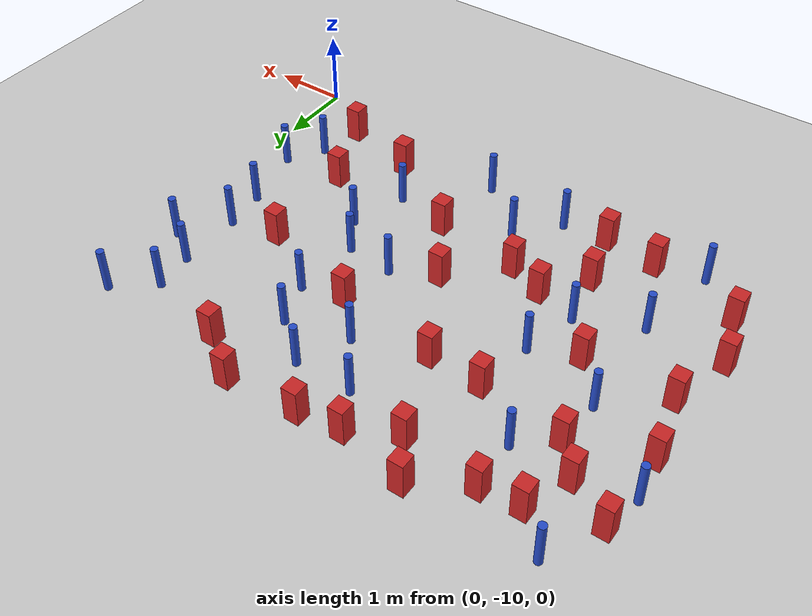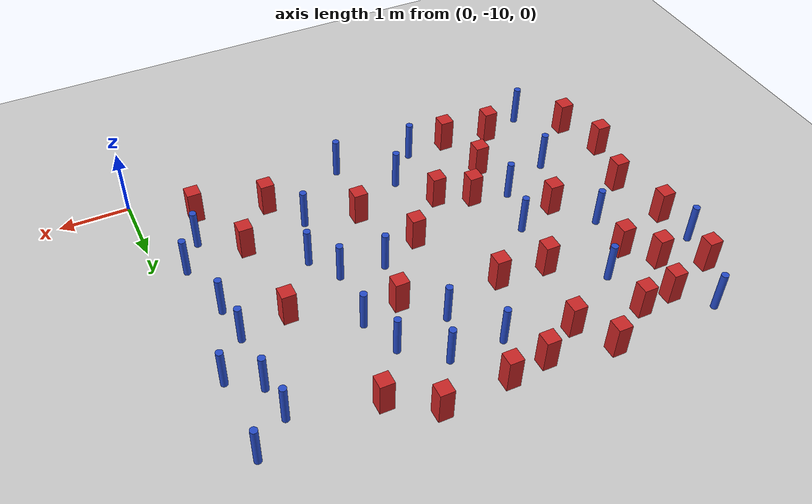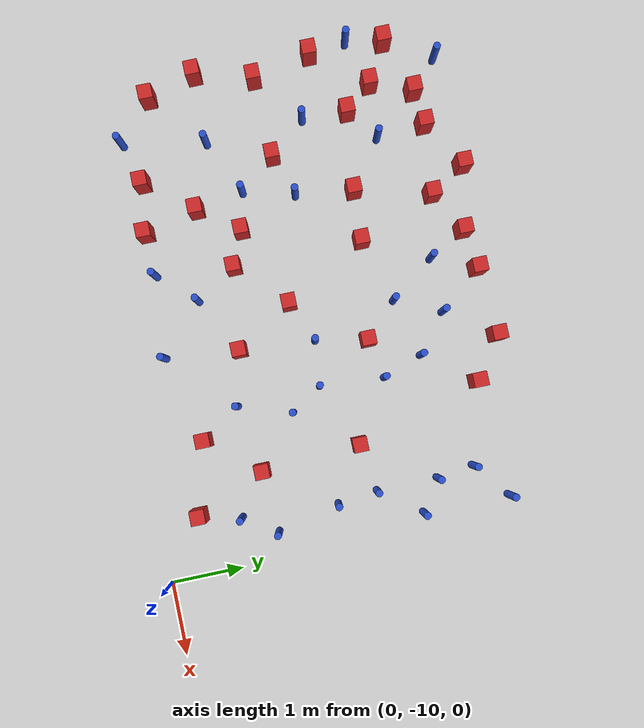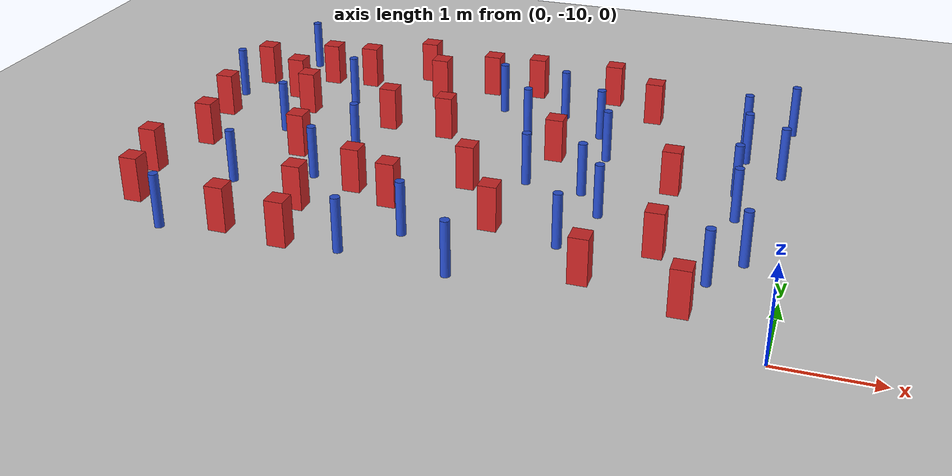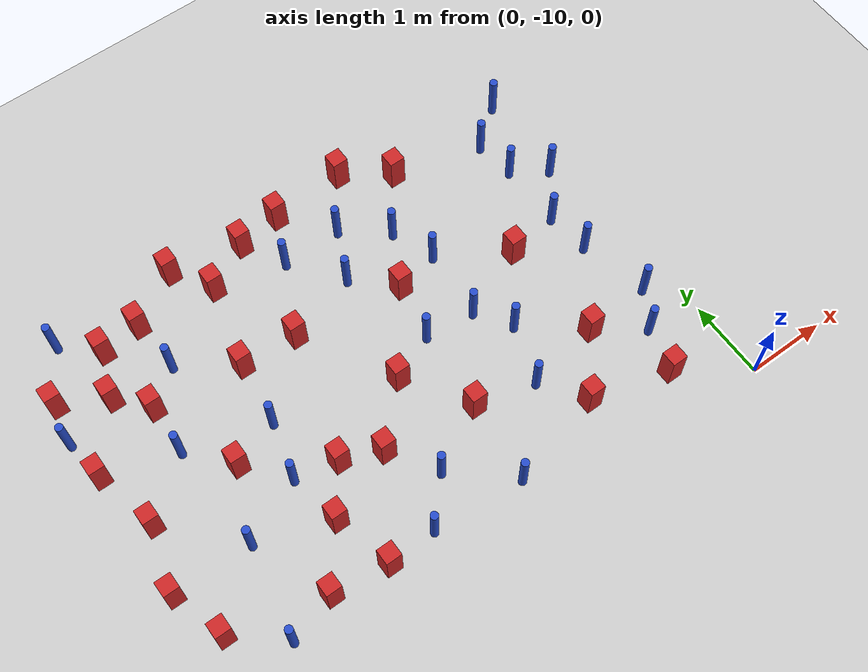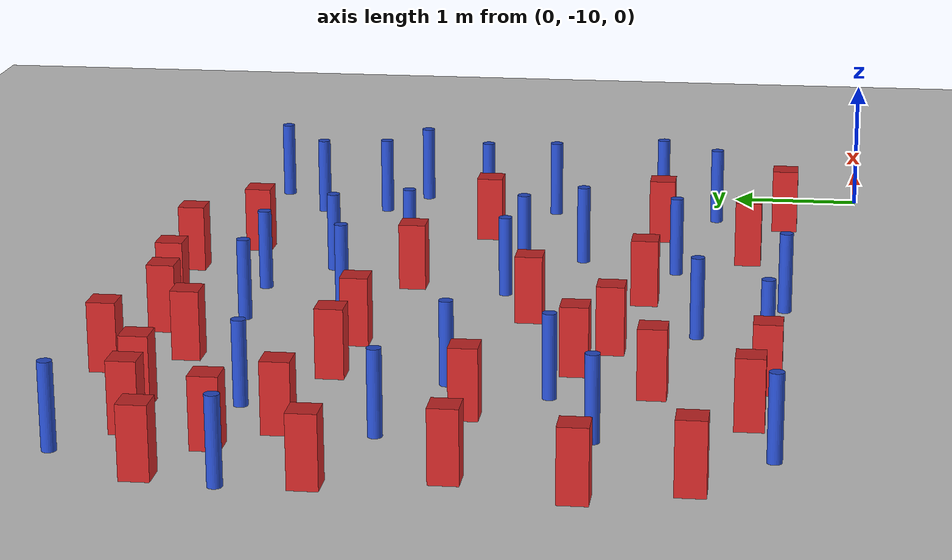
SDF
<sdf version="1.6">
 <world name="default">
  <model name="ground_plane">
   <static>1</static>
   <link name="link">
    <collision name="collision">
     <geometry><plane><normal>0 0 1</normal><size>100 100</size></plane></geometry>
     <surface><friction><ode><mu>100</mu><mu2>50</mu2></ode></friction></surface>
    </collision>
    <visual name="visual">
     <cast_shadows>0</cast_shadows>
     <geometry><plane><normal>0 0 1</normal><size>100 100</size></plane></geometry>
     <material>
      <ambient>1.0 1.0 1.0 1.0</ambient>
      <diffuse>0.8 0.8 0.8 1.0</diffuse>
      <specular>0.01 0.01 0.01 1.000000</specular>
     </material>
    </visual>
   </link>
  </model>
  <model name="square_post_obstacle4">
   <static>true</static>
   <pose>-6.89847792682 -8.28726109435 8.22691968438e-08 7.2212513382e-06 -7.54495500217e-07 2.29674213826e-05</pose>
   <link name="link">
    <pose>0 0 0.25 0 -0 0</pose>
    <inertial>
     <mass>100</mass>
     <inertia>
      <ixx>0.166667</ixx>
      <ixy>0</ixy>
      <ixz>0</ixz>
      <iyy>0.166667</iyy>
      <iyz>0</iyz>
      <izz>0.166667</izz>
     </inertia>
    </inertial>
    <collision name="collision"><geometry><box><size>.2 .2 .5</size></box></geometry></collision>
    <visual name="visual">
     <geometry><box><size>.2 .2 .5</size></box></geometry>
     <material>
      <script><name>Gazebo/Red</name><uri>file://media/materials/scripts/gazebo.material</uri></script>
     </material>
    </visual>
   </link>
  </model>
  <model name="square_post_obstacle5">
   <static>true</static>
   <pose>-4.99715958889 -8.63131955037 8.22691968438e-08 7.22125133819e-06 -7.54495500217e-07 2.29674213826e-05</pose>
   <link name="link">
    <pose>0 0 0.25 0 -0 0</pose>
    <inertial>
     <mass>100</mass>
     <inertia>
      <ixx>0.166667</ixx>
      <ixy>0</ixy>
      <ixz>0</ixz>
      <iyy>0.166667</iyy>
      <iyz>0</iyz>
      <izz>0.166667</izz>
     </inertia>
    </inertial>
    <collision name="collision"><geometry><box><size>.2 .2 .5</size></box></geometry></collision>
    <visual name="visual">
     <geometry><box><size>.2 .2 .5</size></box></geometry>
     <material>
      <script><name>Gazebo/Red</name><uri>file://media/materials/scripts/gazebo.material</uri></script>
     </material>
    </visual>
   </link>
  </model>
  <model name="square_post_obstacle11">
   <static>true</static>
   <pose>-2.94364998078 -8.43636471448 8.22691968438e-08 7.22125133819e-06 -7.54495500217e-07 2.29674213826e-05</pose>
   <link name="link">
    <pose>0 0 0.25 0 -0 0</pose>
    <inertial>
     <mass>100</mass>
     <inertia>
      <ixx>0.166667</ixx>
      <ixy>0</ixy>
      <ixz>0</ixz>
      <iyy>0.166667</iyy>
      <iyz>0</iyz>
      <izz>0.166667</izz>
     </inertia>
    </inertial>
    <collision name="collision"><geometry><box><size>.2 .2 .5</size></box></geometry></collision>
    <visual name="visual">
     <geometry><box><size>.2 .2 .5</size></box></geometry>
     <material>
      <script><name>Gazebo/Red</name><uri>file://media/materials/scripts/gazebo.material</uri></script>
     </material>
    </visual>
   </link>
  </model>
  <model name="pole_obstacle16">
   <static>true</static>
   <pose>-3.04756409129 -9.47227902637 2.88873142074e-08 -9.9053668994e-09 4.60219948987e-07 -1.20965994963e-07</pose>
   <link name="link">
    <pose>0 0 0.3 0 -0 0</pose>
    <inertial>
     <mass>1</mass>
     <inertia><ixx>0.145833</ixx><ixy>0</ixy><ixz>0</ixz><iyy>0.145833</iyy><iyz>0</iyz><izz>0.125</izz></inertia>
    </inertial>
    <collision name="collision">
     <geometry><cylinder><radius>0.05</radius><length>.6</length></cylinder></geometry>
    </collision>
    <visual name="visual">
     <geometry><cylinder><radius>0.05</radius><length>.6</length></cylinder></geometry>
     <material>
      <script><name>Gazebo/Blue</name><uri>file://media/materials/scripts/gazebo.material</uri></script>
     </material>
    </visual>
   </link>
  </model>
  <model name="pole_obstacle18">
   <static>true</static>
   <pose>-0.725370534913 -5.61228863178 2.88873142074e-08 -9.90536689661e-09 4.60219948993e-07 -1.20965994957e-07</pose>
   <link name="link">
    <pose>0 0 0.3 0 -0 0</pose>
    <inertial>
     <mass>1</mass>
     <inertia><ixx>0.145833</ixx><ixy>0</ixy><ixz>0</ixz><iyy>0.145833</iyy><iyz>0</iyz><izz>0.125</izz></inertia>
    </inertial>
    <collision name="collision">
     <geometry><cylinder><radius>0.05</radius><length>.6</length></cylinder></geometry>
    </collision>
    <visual name="visual">
     <geometry><cylinder><radius>0.05</radius><length>.6</length></cylinder></geometry>
     <material>
      <script><name>Gazebo/Blue</name><uri>file://media/materials/scripts/gazebo.material</uri></script>
     </material>
    </visual>
   </link>
  </model>
  <model name="square_post_obstacle14">
   <static>true</static>
   <pose>-1.33679753375 -7.08436974685 8.22691968438e-08 7.2212513382e-06 -7.54495500217e-07 2.29674213826e-05</pose>
   <link name="link">
    <pose>0 0 0.25 0 -0 0</pose>
    <inertial>
     <mass>100</mass>
     <inertia>
      <ixx>0.166667</ixx>
      <ixy>0</ixy>
      <ixz>0</ixz>
      <iyy>0.166667</iyy>
      <iyz>0</iyz>
      <izz>0.166667</izz>
     </inertia>
    </inertial>
    <collision name="collision"><geometry><box><size>.2 .2 .5</size></box></geometry></collision>
    <visual name="visual">
     <geometry><box><size>.2 .2 .5</size></box></geometry>
     <material>
      <script><name>Gazebo/Red</name><uri>file://media/materials/scripts/gazebo.material</uri></script>
     </material>
    </visual>
   </link>
  </model>
  <model name="pole_obstacle19">
   <static>true</static>
   <pose>-3.73403376019 -8.86174645035 2.88873142074e-08 -9.90536692318e-09 4.6021994893e-07 -1.20965994988e-07</pose>
   <link name="link">
    <pose>0 0 0.3 0 -0 0</pose>
    <inertial>
     <mass>1</mass>
     <inertia><ixx>0.145833</ixx><ixy>0</ixy><ixz>0</ixz><iyy>0.145833</iyy><iyz>0</iyz><izz>0.125</izz></inertia>
    </inertial>
    <collision name="collision">
     <geometry><cylinder><radius>0.05</radius><length>.6</length></cylinder></geometry>
    </collision>
    <visual name="visual">
     <geometry><cylinder><radius>0.05</radius><length>.6</length></cylinder></geometry>
     <material>
      <script><name>Gazebo/Blue</name><uri>file://media/materials/scripts/gazebo.material</uri></script>
     </material>
    </visual>
   </link>
  </model>
  <model name="square_post_obstacle16">
   <static>true</static>
   <pose>-5.93300820682 -6.28503762178 8.22691968438e-08 7.2212513382e-06 -7.54495500217e-07 2.29674213826e-05</pose>
   <link name="link">
    <pose>0 0 0.25 0 -0 0</pose>
    <inertial>
     <mass>100</mass>
     <inertia>
      <ixx>0.166667</ixx>
      <ixy>0</ixy>
      <ixz>0</ixz>
      <iyy>0.166667</iyy>
      <iyz>0</iyz>
      <izz>0.166667</izz>
     </inertia>
    </inertial>
    <collision name="collision"><geometry><box><size>.2 .2 .5</size></box></geometry></collision>
    <visual name="visual">
     <geometry><box><size>.2 .2 .5</size></box></geometry>
     <material>
      <script><name>Gazebo/Red</name><uri>file://media/materials/scripts/gazebo.material</uri></script>
     </material>
    </visual>
   </link>
  </model>
  <model name="pole_obstacle31">
   <static>true</static>
   <pose>-5.91071230135 -8.3090513306 2.88873142074e-08 -9.9053668967e-09 4.60219948993e-07 -1.20965994957e-07</pose>
   <link name="link">
    <pose>0 0 0.3 0 -0 0</pose>
    <inertial>
     <mass>1</mass>
     <inertia><ixx>0.145833</ixx><ixy>0</ixy><ixz>0</ixz><iyy>0.145833</iyy><iyz>0</iyz><izz>0.125</izz></inertia>
    </inertial>
    <collision name="collision">
     <geometry><cylinder><radius>0.05</radius><length>.6</length></cylinder></geometry>
    </collision>
    <visual name="visual">
     <geometry><cylinder><radius>0.05</radius><length>.6</length></cylinder></geometry>
     <material>
      <script><name>Gazebo/Blue</name><uri>file://media/materials/scripts/gazebo.material</uri></script>
     </material>
    </visual>
   </link>
  </model>
  <model name="square_post_obstacle27">
   <static>true</static>
   <pose>-4.8171348968 -6.42629901897 8.22691968438e-08 7.2212513382e-06 -7.54495500217e-07 2.29674213826e-05</pose>
   <link name="link">
    <pose>0 0 0.25 0 -0 0</pose>
    <inertial>
     <mass>100</mass>
     <inertia>
      <ixx>0.166667</ixx>
      <ixy>0</ixy>
      <ixz>0</ixz>
      <iyy>0.166667</iyy>
      <iyz>0</iyz>
      <izz>0.166667</izz>
     </inertia>
    </inertial>
    <collision name="collision"><geometry><box><size>.2 .2 .5</size></box></geometry></collision>
    <visual name="visual">
     <geometry><box><size>.2 .2 .5</size></box></geometry>
     <material>
      <script><name>Gazebo/Red</name><uri>file://media/materials/scripts/gazebo.material</uri></script>
     </material>
    </visual>
   </link>
  </model>
  <model name="square_post_obstacle28">
   <static>true</static>
   <pose>-2.72420011936 -6.67131819097 8.22691968438e-08 7.22125133819e-06 -7.54495500217e-07 2.29674213826e-05</pose>
   <link name="link">
    <pose>0 0 0.25 0 -0 0</pose>
    <inertial>
     <mass>100</mass>
     <inertia>
      <ixx>0.166667</ixx>
      <ixy>0</ixy>
      <ixz>0</ixz>
      <iyy>0.166667</iyy>
      <iyz>0</iyz>
      <izz>0.166667</izz>
     </inertia>
    </inertial>
    <collision name="collision"><geometry><box><size>.2 .2 .5</size></box></geometry></collision>
    <visual name="visual">
     <geometry><box><size>.2 .2 .5</size></box></geometry>
     <material>
      <script><name>Gazebo/Red</name><uri>file://media/materials/scripts/gazebo.material</uri></script>
     </material>
    </visual>
   </link>
  </model>
  <model name="pole_obstacle38">
   <static>true</static>
   <pose>-6.93254812859 -6.09302967998 2.88873142074e-08 -9.90536690842e-09 4.60219948965e-07 -1.20965994976e-07</pose>
   <link name="link">
    <pose>0 0 0.3 0 -0 0</pose>
    <inertial>
     <mass>1</mass>
     <inertia><ixx>0.145833</ixx><ixy>0</ixy><ixz>0</ixz><iyy>0.145833</iyy><iyz>0</iyz><izz>0.125</izz></inertia>
    </inertial>
    <collision name="collision">
     <geometry><cylinder><radius>0.05</radius><length>.6</length></cylinder></geometry>
    </collision>
    <visual name="visual">
     <geometry><cylinder><radius>0.05</radius><length>.6</length></cylinder></geometry>
     <material>
      <script><name>Gazebo/Blue</name><uri>file://media/materials/scripts/gazebo.material</uri></script>
     </material>
    </visual>
   </link>
  </model>
  <model name="square_post_obstacle39">
   <static>true</static>
   <pose>-6.82182330717 -5.58379455638 8.22691968438e-08 7.2212513382e-06 -7.54495500217e-07 2.29674213826e-05</pose>
   <link name="link">
    <pose>0 0 0.25 0 -0 0</pose>
    <inertial>
     <mass>100</mass>
     <inertia>
      <ixx>0.166667</ixx>
      <ixy>0</ixy>
      <ixz>0</ixz>
      <iyy>0.166667</iyy>
      <iyz>0</iyz>
      <izz>0.166667</izz>
     </inertia>
    </inertial>
    <collision name="collision"><geometry><box><size>.2 .2 .5</size></box></geometry></collision>
    <visual name="visual">
     <geometry><box><size>.2 .2 .5</size></box></geometry>
     <material>
      <script><name>Gazebo/Red</name><uri>file://media/materials/scripts/gazebo.material</uri></script>
     </material>
    </visual>
   </link>
  </model>
  <model name="square_post_obstacle42">
   <static>true</static>
   <pose>-5.52902615149 -7.43978765106 8.22691968438e-08 7.2212513382e-06 -7.54495500217e-07 2.29674213826e-05</pose>
   <link name="link">
    <pose>0 0 0.25 0 -0 0</pose>
    <inertial>
     <mass>100</mass>
     <inertia>
      <ixx>0.166667</ixx>
      <ixy>0</ixy>
      <ixz>0</ixz>
      <iyy>0.166667</iyy>
      <iyz>0</iyz>
      <izz>0.166667</izz>
     </inertia>
    </inertial>
    <collision name="collision"><geometry><box><size>.2 .2 .5</size></box></geometry></collision>
    <visual name="visual">
     <geometry><box><size>.2 .2 .5</size></box></geometry>
     <material>
      <script><name>Gazebo/Red</name><uri>file://media/materials/scripts/gazebo.material</uri></script>
     </material>
    </visual>
   </link>
  </model>
  <model name="square_post_obstacle43">
   <static>true</static>
   <pose>-6.69458406648 -8.98083696813 8.22691968438e-08 7.22125133819e-06 -7.54495500217e-07 2.29674213826e-05</pose>
   <link name="link">
    <pose>0 0 0.25 0 -0 0</pose>
    <inertial>
     <mass>100</mass>
     <inertia>
      <ixx>0.166667</ixx>
      <ixy>0</ixy>
      <ixz>0</ixz>
      <iyy>0.166667</iyy>
      <iyz>0</iyz>
      <izz>0.166667</izz>
     </inertia>
    </inertial>
    <collision name="collision"><geometry><box><size>.2 .2 .5</size></box></geometry></collision>
    <visual name="visual">
     <geometry><box><size>.2 .2 .5</size></box></geometry>
     <material>
      <script><name>Gazebo/Red</name><uri>file://media/materials/scripts/gazebo.material</uri></script>
     </material>
    </visual>
   </link>
  </model>
  <model name="pole_obstacle57">
   <static>true</static>
   <pose>-0.390171452556 -8.41027305759 2.88873142074e-08 -9.90536691079e-09 4.6021994896e-07 -1.2096599498e-07</pose>
   <link name="link">
    <pose>0 0 0.3 0 -0 0</pose>
    <inertial>
     <mass>1</mass>
     <inertia><ixx>0.145833</ixx><ixy>0</ixy><ixz>0</ixz><iyy>0.145833</iyy><iyz>0</iyz><izz>0.125</izz></inertia>
    </inertial>
    <collision name="collision">
     <geometry><cylinder><radius>0.05</radius><length>.6</length></cylinder></geometry>
    </collision>
    <visual name="visual">
     <geometry><cylinder><radius>0.05</radius><length>.6</length></cylinder></geometry>
     <material>
      <script><name>Gazebo/Blue</name><uri>file://media/materials/scripts/gazebo.material</uri></script>
     </material>
    </visual>
   </link>
  </model>
  <model name="pole_obstacle68">
   <static>true</static>
   <pose>-4.92867841864 -7.23289748465 2.88873142074e-08 -9.90536690842e-09 4.60219948965e-07 -1.20965994976e-07</pose>
   <link name="link">
    <pose>0 0 0.3 0 -0 0</pose>
    <inertial>
     <mass>1</mass>
     <inertia><ixx>0.145833</ixx><ixy>0</ixy><ixz>0</ixz><iyy>0.145833</iyy><iyz>0</iyz><izz>0.125</izz></inertia>
    </inertial>
    <collision name="collision">
     <geometry><cylinder><radius>0.05</radius><length>.6</length></cylinder></geometry>
    </collision>
    <visual name="visual">
     <geometry><cylinder><radius>0.05</radius><length>.6</length></cylinder></geometry>
     <material>
      <script><name>Gazebo/Blue</name><uri>file://media/materials/scripts/gazebo.material</uri></script>
     </material>
    </visual>
   </link>
  </model>
  <model name="square_post_obstacle51">
   <static>true</static>
   <pose>-4.54083356304 -5.36353903543 8.22691968438e-08 7.22125133819e-06 -7.54495500217e-07 2.29674213826e-05</pose>
   <link name="link">
    <pose>0 0 0.25 0 -0 0</pose>
    <inertial>
     <mass>100</mass>
     <inertia>
      <ixx>0.166667</ixx>
      <ixy>0</ixy>
      <ixz>0</ixz>
      <iyy>0.166667</iyy>
      <iyz>0</iyz>
      <izz>0.166667</izz>
     </inertia>
    </inertial>
    <collision name="collision"><geometry><box><size>.2 .2 .5</size></box></geometry></collision>
    <visual name="visual">
     <geometry><box><size>.2 .2 .5</size></box></geometry>
     <material>
      <script><name>Gazebo/Red</name><uri>file://media/materials/scripts/gazebo.material</uri></script>
     </material>
    </visual>
   </link>
  </model>
  <model name="square_post_obstacle58">
   <static>true</static>
   <pose>-6.66805850769 -7.47391446001 8.22691968438e-08 7.22125133819e-06 -7.54495500217e-07 2.29674213826e-05</pose>
   <link name="link">
    <pose>0 0 0.25 0 -0 0</pose>
    <inertial>
     <mass>100</mass>
     <inertia>
      <ixx>0.166667</ixx>
      <ixy>0</ixy>
      <ixz>0</ixz>
      <iyy>0.166667</iyy>
      <iyz>0</iyz>
      <izz>0.166667</izz>
     </inertia>
    </inertial>
    <collision name="collision"><geometry><box><size>.2 .2 .5</size></box></geometry></collision>
    <visual name="visual">
     <geometry><box><size>.2 .2 .5</size></box></geometry>
     <material>
      <script><name>Gazebo/Red</name><uri>file://media/materials/scripts/gazebo.material</uri></script>
     </material>
    </visual>
   </link>
  </model>
  <model name="square_post_obstacle64">
   <static>true</static>
   <pose>-4.10152325743 -6.47074619593 8.22691968438e-08 7.22125133819e-06 -7.54495500217e-07 2.29674213826e-05</pose>
   <link name="link">
    <pose>0 0 0.25 0 -0 0</pose>
    <inertial>
     <mass>100</mass>
     <inertia>
      <ixx>0.166667</ixx>
      <ixy>0</ixy>
      <ixz>0</ixz>
      <iyy>0.166667</iyy>
      <iyz>0</iyz>
      <izz>0.166667</izz>
     </inertia>
    </inertial>
    <collision name="collision"><geometry><box><size>.2 .2 .5</size></box></geometry></collision>
    <visual name="visual">
     <geometry><box><size>.2 .2 .5</size></box></geometry>
     <material>
      <script><name>Gazebo/Red</name><uri>file://media/materials/scripts/gazebo.material</uri></script>
     </material>
    </visual>
   </link>
  </model>
  <model name="pole_obstacle77">
   <static>true</static>
   <pose>-0.592898677398 -7.53756572075 2.88873142074e-08 -9.90536689661e-09 4.60219948993e-07 -1.20965994957e-07</pose>
   <link name="link">
    <pose>0 0 0.3 0 -0 0</pose>
    <inertial>
     <mass>1</mass>
     <inertia><ixx>0.145833</ixx><ixy>0</ixy><ixz>0</ixz><iyy>0.145833</iyy><iyz>0</iyz><izz>0.125</izz></inertia>
    </inertial>
    <collision name="collision">
     <geometry><cylinder><radius>0.05</radius><length>.6</length></cylinder></geometry>
    </collision>
    <visual name="visual">
     <geometry><cylinder><radius>0.05</radius><length>.6</length></cylinder></geometry>
     <material>
      <script><name>Gazebo/Blue</name><uri>file://media/materials/scripts/gazebo.material</uri></script>
     </material>
    </visual>
   </link>
  </model>
  <model name="pole_obstacle86">
   <static>true</static>
   <pose>-0.660240607228 -6.12908045797 2.88873142074e-08 -9.90536689661e-09 4.60219948993e-07 -1.20965994957e-07</pose>
   <link name="link">
    <pose>0 0 0.3 0 -0 0</pose>
    <inertial>
     <mass>1</mass>
     <inertia><ixx>0.145833</ixx><ixy>0</ixy><ixz>0</ixz><iyy>0.145833</iyy><iyz>0</iyz><izz>0.125</izz></inertia>
    </inertial>
    <collision name="collision">
     <geometry><cylinder><radius>0.05</radius><length>.6</length></cylinder></geometry>
    </collision>
    <visual name="visual">
     <geometry><cylinder><radius>0.05</radius><length>.6</length></cylinder></geometry>
     <material>
      <script><name>Gazebo/Blue</name><uri>file://media/materials/scripts/gazebo.material</uri></script>
     </material>
    </visual>
   </link>
  </model>
  <model name="pole_obstacle89">
   <static>true</static>
   <pose>-1.94730726459 -7.88725564603 2.88873142074e-08 -9.90536689852e-09 4.60219948989e-07 -1.2096599496e-07</pose>
   <link name="link">
    <pose>0 0 0.3 0 -0 0</pose>
    <inertial>
     <mass>1</mass>
     <inertia><ixx>0.145833</ixx><ixy>0</ixy><ixz>0</ixz><iyy>0.145833</iyy><iyz>0</iyz><izz>0.125</izz></inertia>
    </inertial>
    <collision name="collision">
     <geometry><cylinder><radius>0.05</radius><length>.6</length></cylinder></geometry>
    </collision>
    <visual name="visual">
     <geometry><cylinder><radius>0.05</radius><length>.6</length></cylinder></geometry>
     <material>
      <script><name>Gazebo/Blue</name><uri>file://media/materials/scripts/gazebo.material</uri></script>
     </material>
    </visual>
   </link>
  </model>
  <model name="square_post_obstacle79">
   <static>true</static>
   <pose>-3.44797224578 -7.63409735773 8.22691968438e-08 7.2212513382e-06 -7.54495500217e-07 2.29674213826e-05</pose>
   <link name="link">
    <pose>0 0 0.25 0 -0 0</pose>
    <inertial>
     <mass>100</mass>
     <inertia>
      <ixx>0.166667</ixx>
      <ixy>0</ixy>
      <ixz>0</ixz>
      <iyy>0.166667</iyy>
      <iyz>0</iyz>
      <izz>0.166667</izz>
     </inertia>
    </inertial>
    <collision name="collision"><geometry><box><size>.2 .2 .5</size></box></geometry></collision>
    <visual name="visual">
     <geometry><box><size>.2 .2 .5</size></box></geometry>
     <material>
      <script><name>Gazebo/Red</name><uri>file://media/materials/scripts/gazebo.material</uri></script>
     </material>
    </visual>
   </link>
  </model>
  <model name="square_post_obstacle80">
   <static>true</static>
   <pose>-3.39131519977 -4.97092265114 8.22691968438e-08 7.22125133819e-06 -7.54495500217e-07 2.29674213826e-05</pose>
   <link name="link">
    <pose>0 0 0.25 0 -0 0</pose>
    <inertial>
     <mass>100</mass>
     <inertia>
      <ixx>0.166667</ixx>
      <ixy>0</ixy>
      <ixz>0</ixz>
      <iyy>0.166667</iyy>
      <iyz>0</iyz>
      <izz>0.166667</izz>
     </inertia>
    </inertial>
    <collision name="collision"><geometry><box><size>.2 .2 .5</size></box></geometry></collision>
    <visual name="visual">
     <geometry><box><size>.2 .2 .5</size></box></geometry>
     <material>
      <script><name>Gazebo/Red</name><uri>file://media/materials/scripts/gazebo.material</uri></script>
     </material>
    </visual>
   </link>
  </model>
  <model name="pole_obstacle97">
   <static>true</static>
   <pose>-2.86139601334 -7.38526172102 2.88873142074e-08 -9.90536689859e-09 4.60219948989e-07 -1.20965994961e-07</pose>
   <link name="link">
    <pose>0 0 0.3 0 -0 0</pose>
    <inertial>
     <mass>1</mass>
     <inertia><ixx>0.145833</ixx><ixy>0</ixy><ixz>0</ixz><iyy>0.145833</iyy><iyz>0</iyz><izz>0.125</izz></inertia>
    </inertial>
    <collision name="collision">
     <geometry><cylinder><radius>0.05</radius><length>.6</length></cylinder></geometry>
    </collision>
    <visual name="visual">
     <geometry><cylinder><radius>0.05</radius><length>.6</length></cylinder></geometry>
     <material>
      <script><name>Gazebo/Blue</name><uri>file://media/materials/scripts/gazebo.material</uri></script>
     </material>
    </visual>
   </link>
  </model>
  <model name="pole_obstacle100">
   <static>true</static>
   <pose>-2.22927015639 -7.4533081408 2.88873142074e-08 -9.90536689859e-09 4.60219948989e-07 -1.20965994961e-07</pose>
   <link name="link">
    <pose>0 0 0.3 0 -0 0</pose>
    <inertial>
     <mass>1</mass>
     <inertia><ixx>0.145833</ixx><ixy>0</ixy><ixz>0</ixz><iyy>0.145833</iyy><iyz>0</iyz><izz>0.125</izz></inertia>
    </inertial>
    <collision name="collision">
     <geometry><cylinder><radius>0.05</radius><length>.6</length></cylinder></geometry>
    </collision>
    <visual name="visual">
     <geometry><cylinder><radius>0.05</radius><length>.6</length></cylinder></geometry>
     <material>
      <script><name>Gazebo/Blue</name><uri>file://media/materials/scripts/gazebo.material</uri></script>
     </material>
    </visual>
   </link>
  </model>
  <model name="square_post_obstacle99">
   <static>true</static>
   <pose>-2.43279941911 -4.90987903191 8.22691968438e-08 7.22125133819e-06 -7.54495500217e-07 2.29674213826e-05</pose>
   <link name="link">
    <pose>0 0 0.25 0 -0 0</pose>
    <inertial>
     <mass>100</mass>
     <inertia>
      <ixx>0.166667</ixx>
      <ixy>0</ixy>
      <ixz>0</ixz>
      <iyy>0.166667</iyy>
      <iyz>0</iyz>
      <izz>0.166667</izz>
     </inertia>
    </inertial>
    <collision name="collision"><geometry><box><size>.2 .2 .5</size></box></geometry></collision>
    <visual name="visual">
     <geometry><box><size>.2 .2 .5</size></box></geometry>
     <material>
      <script><name>Gazebo/Red</name><uri>file://media/materials/scripts/gazebo.material</uri></script>
     </material>
    </visual>
   </link>
  </model>
  <model name="pole_obstacle104">
   <static>true</static>
   <pose>-6.13169709679 -9.47226870257 2.88873142074e-08 -9.9053668967e-09 4.60219948993e-07 -1.20965994957e-07</pose>
   <link name="link">
    <pose>0 0 0.3 0 -0 0</pose>
    <inertial>
     <mass>1</mass>
     <inertia><ixx>0.145833</ixx><ixy>0</ixy><ixz>0</ixz><iyy>0.145833</iyy><iyz>0</iyz><izz>0.125</izz></inertia>
    </inertial>
    <collision name="collision">
     <geometry><cylinder><radius>0.05</radius><length>.6</length></cylinder></geometry>
    </collision>
    <visual name="visual">
     <geometry><cylinder><radius>0.05</radius><length>.6</length></cylinder></geometry>
     <material>
      <script><name>Gazebo/Blue</name><uri>file://media/materials/scripts/gazebo.material</uri></script>
     </material>
    </visual>
   </link>
  </model>
  <model name="pole_obstacle109">
   <static>true</static>
   <pose>-0.230915823604 -5.21363662847 2.88873142074e-08 -9.90536689703e-09 4.60219948992e-07 -1.20965994959e-07</pose>
   <link name="link">
    <pose>0 0 0.3 0 -0 0</pose>
    <inertial>
     <mass>1</mass>
     <inertia><ixx>0.145833</ixx><ixy>0</ixy><ixz>0</ixz><iyy>0.145833</iyy><iyz>0</iyz><izz>0.125</izz></inertia>
    </inertial>
    <collision name="collision">
     <geometry><cylinder><radius>0.05</radius><length>.6</length></cylinder></geometry>
    </collision>
    <visual name="visual">
     <geometry><cylinder><radius>0.05</radius><length>.6</length></cylinder></geometry>
     <material>
      <script><name>Gazebo/Blue</name><uri>file://media/materials/scripts/gazebo.material</uri></script>
     </material>
    </visual>
   </link>
  </model>
  <model name="square_post_obstacle108">
   <static>true</static>
   <pose>-0.836702543547 -9.42551951914 8.22691968438e-08 7.22125133819e-06 -7.54495500217e-07 2.29674213826e-05</pose>
   <link name="link">
    <pose>0 0 0.25 0 -0 0</pose>
    <inertial>
     <mass>100</mass>
     <inertia>
      <ixx>0.166667</ixx>
      <ixy>0</ixy>
      <ixz>0</ixz>
      <iyy>0.166667</iyy>
      <iyz>0</iyz>
      <izz>0.166667</izz>
     </inertia>
    </inertial>
    <collision name="collision"><geometry><box><size>.2 .2 .5</size></box></geometry></collision>
    <visual name="visual">
     <geometry><box><size>.2 .2 .5</size></box></geometry>
     <material>
      <script><name>Gazebo/Red</name><uri>file://media/materials/scripts/gazebo.material</uri></script>
     </material>
    </visual>
   </link>
  </model>
  <model name="pole_obstacle113">
   <static>true</static>
   <pose>-5.48943360602 -5.93772221229 2.88873142074e-08 -9.90536690842e-09 4.60219948965e-07 -1.20965994976e-07</pose>
   <link name="link">
    <pose>0 0 0.3 0 -0 0</pose>
    <inertial>
     <mass>1</mass>
     <inertia><ixx>0.145833</ixx><ixy>0</ixy><ixz>0</ixz><iyy>0.145833</iyy><iyz>0</iyz><izz>0.125</izz></inertia>
    </inertial>
    <collision name="collision">
     <geometry><cylinder><radius>0.05</radius><length>.6</length></cylinder></geometry>
    </collision>
    <visual name="visual">
     <geometry><cylinder><radius>0.05</radius><length>.6</length></cylinder></geometry>
     <material>
      <script><name>Gazebo/Blue</name><uri>file://media/materials/scripts/gazebo.material</uri></script>
     </material>
    </visual>
   </link>
  </model>
  <model name="square_post_obstacle117">
   <static>true</static>
   <pose>-5.51898376412 -9.29542575051 8.22691968438e-08 7.22125133819e-06 -7.54495500217e-07 2.29674213826e-05</pose>
   <link name="link">
    <pose>0 0 0.25 0 -0 0</pose>
    <inertial>
     <mass>100</mass>
     <inertia>
      <ixx>0.166667</ixx>
      <ixy>0</ixy>
      <ixz>0</ixz>
      <iyy>0.166667</iyy>
      <iyz>0</iyz>
      <izz>0.166667</izz>
     </inertia>
    </inertial>
    <collision name="collision"><geometry><box><size>.2 .2 .5</size></box></geometry></collision>
    <visual name="visual">
     <geometry><box><size>.2 .2 .5</size></box></geometry>
     <material>
      <script><name>Gazebo/Red</name><uri>file://media/materials/scripts/gazebo.material</uri></script>
     </material>
    </visual>
   </link>
  </model>
  <model name="pole_obstacle139">
   <static>true</static>
   <pose>-2.1635901593 -6.55166167454 2.88873142074e-08 -9.90536689859e-09 4.60219948989e-07 -1.20965994961e-07</pose>
   <link name="link">
    <pose>0 0 0.3 0 -0 0</pose>
    <inertial>
     <mass>1</mass>
     <inertia><ixx>0.145833</ixx><ixy>0</ixy><ixz>0</ixz><iyy>0.145833</iyy><iyz>0</iyz><izz>0.125</izz></inertia>
    </inertial>
    <collision name="collision">
     <geometry><cylinder><radius>0.05</radius><length>.6</length></cylinder></geometry>
    </collision>
    <visual name="visual">
     <geometry><cylinder><radius>0.05</radius><length>.6</length></cylinder></geometry>
     <material>
      <script><name>Gazebo/Blue</name><uri>file://media/materials/scripts/gazebo.material</uri></script>
     </material>
    </visual>
   </link>
  </model>
  <model name="pole_obstacle142">
   <static>true</static>
   <pose>-0.237644465877 -6.41427470171 2.88873142074e-08 -9.90536689703e-09 4.60219948992e-07 -1.20965994959e-07</pose>
   <link name="link">
    <pose>0 0 0.3 0 -0 0</pose>
    <inertial>
     <mass>1</mass>
     <inertia><ixx>0.145833</ixx><ixy>0</ixy><ixz>0</ixz><iyy>0.145833</iyy><iyz>0</iyz><izz>0.125</izz></inertia>
    </inertial>
    <collision name="collision">
     <geometry><cylinder><radius>0.05</radius><length>.6</length></cylinder></geometry>
    </collision>
    <visual name="visual">
     <geometry><cylinder><radius>0.05</radius><length>.6</length></cylinder></geometry>
     <material>
      <script><name>Gazebo/Blue</name><uri>file://media/materials/scripts/gazebo.material</uri></script>
     </material>
    </visual>
   </link>
  </model>
  <model name="square_post_obstacle139">
   <static>true</static>
   <pose>-4.85796533244 -4.85868718945 8.22691968438e-08 7.22125133819e-06 -7.54495500217e-07 2.29674213826e-05</pose>
   <link name="link">
    <pose>0 0 0.25 0 -0 0</pose>
    <inertial>
     <mass>100</mass>
     <inertia>
      <ixx>0.166667</ixx>
      <ixy>0</ixy>
      <ixz>0</ixz>
      <iyy>0.166667</iyy>
      <iyz>0</iyz>
      <izz>0.166667</izz>
     </inertia>
    </inertial>
    <collision name="collision"><geometry><box><size>.2 .2 .5</size></box></geometry></collision>
    <visual name="visual">
     <geometry><box><size>.2 .2 .5</size></box></geometry>
     <material>
      <script><name>Gazebo/Red</name><uri>file://media/materials/scripts/gazebo.material</uri></script>
     </material>
    </visual>
   </link>
  </model>
  <model name="square_post_obstacle140">
   <static>true</static>
   <pose>-6.26141203056 -5.89522120653 8.22691968438e-08 7.22125133819e-06 -7.54495500217e-07 2.29674213826e-05</pose>
   <link name="link">
    <pose>0 0 0.25 0 -0 0</pose>
    <inertial>
     <mass>100</mass>
     <inertia>
      <ixx>0.166667</ixx>
      <ixy>0</ixy>
      <ixz>0</ixz>
      <iyy>0.166667</iyy>
      <iyz>0</iyz>
      <izz>0.166667</izz>
     </inertia>
    </inertial>
    <collision name="collision"><geometry><box><size>.2 .2 .5</size></box></geometry></collision>
    <visual name="visual">
     <geometry><box><size>.2 .2 .5</size></box></geometry>
     <material>
      <script><name>Gazebo/Red</name><uri>file://media/materials/scripts/gazebo.material</uri></script>
     </material>
    </visual>
   </link>
  </model>
  <model name="pole_obstacle149">
   <static>true</static>
   <pose>-0.682147562871 -8.86739986068 2.88873142074e-08 -9.90536690779e-09 4.60219948967e-07 -1.20965994975e-07</pose>
   <link name="link">
    <pose>0 0 0.3 0 -0 0</pose>
    <inertial>
     <mass>1</mass>
     <inertia><ixx>0.145833</ixx><ixy>0</ixy><ixz>0</ixz><iyy>0.145833</iyy><iyz>0</iyz><izz>0.125</izz></inertia>
    </inertial>
    <collision name="collision">
     <geometry><cylinder><radius>0.05</radius><length>.6</length></cylinder></geometry>
    </collision>
    <visual name="visual">
     <geometry><cylinder><radius>0.05</radius><length>.6</length></cylinder></geometry>
     <material>
      <script><name>Gazebo/Blue</name><uri>file://media/materials/scripts/gazebo.material</uri></script>
     </material>
    </visual>
   </link>
  </model>
  <model name="square_post_obstacle150">
   <static>true</static>
   <pose>-1.82659507961 -9.16257083729 8.22691968438e-08 7.2212513382e-06 -7.54495500217e-07 2.29674213826e-05</pose>
   <link name="link">
    <pose>0 0 0.25 0 -0 0</pose>
    <inertial>
     <mass>100</mass>
     <inertia>
      <ixx>0.166667</ixx>
      <ixy>0</ixy>
      <ixz>0</ixz>
      <iyy>0.166667</iyy>
      <iyz>0</iyz>
      <izz>0.166667</izz>
     </inertia>
    </inertial>
    <collision name="collision"><geometry><box><size>.2 .2 .5</size></box></geometry></collision>
    <visual name="visual">
     <geometry><box><size>.2 .2 .5</size></box></geometry>
     <material>
      <script><name>Gazebo/Red</name><uri>file://media/materials/scripts/gazebo.material</uri></script>
     </material>
    </visual>
   </link>
  </model>
  <model name="pole_obstacle157">
   <static>true</static>
   <pose>-5.96567630934 -6.91867703106 2.88873142074e-08 -9.90536690842e-09 4.60219948965e-07 -1.20965994976e-07</pose>
   <link name="link">
    <pose>0 0 0.3 0 -0 0</pose>
    <inertial>
     <mass>1</mass>
     <inertia><ixx>0.145833</ixx><ixy>0</ixy><ixz>0</ixz><iyy>0.145833</iyy><iyz>0</iyz><izz>0.125</izz></inertia>
    </inertial>
    <collision name="collision">
     <geometry><cylinder><radius>0.05</radius><length>.6</length></cylinder></geometry>
    </collision>
    <visual name="visual">
     <geometry><cylinder><radius>0.05</radius><length>.6</length></cylinder></geometry>
     <material>
      <script><name>Gazebo/Blue</name><uri>file://media/materials/scripts/gazebo.material</uri></script>
     </material>
    </visual>
   </link>
  </model>
  <model name="square_post_obstacle154">
   <static>true</static>
   <pose>-5.5330856905 -5.26006373033 8.22691968438e-08 7.22125133819e-06 -7.54495500217e-07 2.29674213826e-05</pose>
   <link name="link">
    <pose>0 0 0.25 0 -0 0</pose>
    <inertial>
     <mass>100</mass>
     <inertia>
      <ixx>0.166667</ixx>
      <ixy>0</ixy>
      <ixz>0</ixz>
      <iyy>0.166667</iyy>
      <iyz>0</iyz>
      <izz>0.166667</izz>
     </inertia>
    </inertial>
    <collision name="collision"><geometry><box><size>.2 .2 .5</size></box></geometry></collision>
    <visual name="visual">
     <geometry><box><size>.2 .2 .5</size></box></geometry>
     <material>
      <script><name>Gazebo/Red</name><uri>file://media/materials/scripts/gazebo.material</uri></script>
     </material>
    </visual>
   </link>
  </model>
  <model name="square_post_obstacle155">
   <static>true</static>
   <pose>-6.85237044664 -6.63849824851 8.22691968438e-08 7.22125133819e-06 -7.54495500217e-07 2.29674213826e-05</pose>
   <link name="link">
    <pose>0 0 0.25 0 -0 0</pose>
    <inertial>
     <mass>100</mass>
     <inertia>
      <ixx>0.166667</ixx>
      <ixy>0</ixy>
      <ixz>0</ixz>
      <iyy>0.166667</iyy>
      <iyz>0</iyz>
      <izz>0.166667</izz>
     </inertia>
    </inertial>
    <collision name="collision"><geometry><box><size>.2 .2 .5</size></box></geometry></collision>
    <visual name="visual">
     <geometry><box><size>.2 .2 .5</size></box></geometry>
     <material>
      <script><name>Gazebo/Red</name><uri>file://media/materials/scripts/gazebo.material</uri></script>
     </material>
    </visual>
   </link>
  </model>
  <model name="pole_obstacle167">
   <static>true</static>
   <pose>-3.18666302893 -6.20060540389 2.88873142074e-08 -9.90536689859e-09 4.60219948989e-07 -1.20965994961e-07</pose>
   <link name="link">
    <pose>0 0 0.3 0 -0 0</pose>
    <inertial>
     <mass>1</mass>
     <inertia><ixx>0.145833</ixx><ixy>0</ixy><ixz>0</ixz><iyy>0.145833</iyy><iyz>0</iyz><izz>0.125</izz></inertia>
    </inertial>
    <collision name="collision">
     <geometry><cylinder><radius>0.05</radius><length>.6</length></cylinder></geometry>
    </collision>
    <visual name="visual">
     <geometry><cylinder><radius>0.05</radius><length>.6</length></cylinder></geometry>
     <material>
      <script><name>Gazebo/Blue</name><uri>file://media/materials/scripts/gazebo.material</uri></script>
     </material>
    </visual>
   </link>
  </model>
  <model name="square_post_obstacle166">
   <static>true</static>
   <pose>-1.85931777102 -5.31007730016 8.22691968438e-08 7.2212513382e-06 -7.54495500217e-07 2.29674213826e-05</pose>
   <link name="link">
    <pose>0 0 0.25 0 -0 0</pose>
    <inertial>
     <mass>100</mass>
     <inertia>
      <ixx>0.166667</ixx>
      <ixy>0</ixy>
      <ixz>0</ixz>
      <iyy>0.166667</iyy>
      <iyz>0</iyz>
      <izz>0.166667</izz>
     </inertia>
    </inertial>
    <collision name="collision"><geometry><box><size>.2 .2 .5</size></box></geometry></collision>
    <visual name="visual">
     <geometry><box><size>.2 .2 .5</size></box></geometry>
     <material>
      <script><name>Gazebo/Red</name><uri>file://media/materials/scripts/gazebo.material</uri></script>
     </material>
    </visual>
   </link>
  </model>
  <model name="square_post_obstacle171">
   <static>true</static>
   <pose>-4.10042514364 -8.27960576444 8.22691968438e-08 7.22125133819e-06 -7.54495500217e-07 2.29674213826e-05</pose>
   <link name="link">
    <pose>0 0 0.25 0 -0 0</pose>
    <inertial>
     <mass>100</mass>
     <inertia>
      <ixx>0.166667</ixx>
      <ixy>0</ixy>
      <ixz>0</ixz>
      <iyy>0.166667</iyy>
      <iyz>0</iyz>
      <izz>0.166667</izz>
     </inertia>
    </inertial>
    <collision name="collision"><geometry><box><size>.2 .2 .5</size></box></geometry></collision>
    <visual name="visual">
     <geometry><box><size>.2 .2 .5</size></box></geometry>
     <material>
      <script><name>Gazebo/Red</name><uri>file://media/materials/scripts/gazebo.material</uri></script>
     </material>
    </visual>
   </link>
  </model>
  <model name="pole_obstacle179">
   <static>true</static>
   <pose>-6.45181991624 -4.91383493677 2.88873142074e-08 -9.90536690842e-09 4.60219948965e-07 -1.20965994976e-07</pose>
   <link name="link">
    <pose>0 0 0.3 0 -0 0</pose>
    <inertial>
     <mass>1</mass>
     <inertia><ixx>0.145833</ixx><ixy>0</ixy><ixz>0</ixz><iyy>0.145833</iyy><iyz>0</iyz><izz>0.125</izz></inertia>
    </inertial>
    <collision name="collision">
     <geometry><cylinder><radius>0.05</radius><length>.6</length></cylinder></geometry>
    </collision>
    <visual name="visual">
     <geometry><cylinder><radius>0.05</radius><length>.6</length></cylinder></geometry>
     <material>
      <script><name>Gazebo/Blue</name><uri>file://media/materials/scripts/gazebo.material</uri></script>
     </material>
    </visual>
   </link>
  </model>
  <model name="square_post_obstacle175">
   <static>true</static>
   <pose>-1.2542038751 -8.46072602658 8.22691968438e-08 7.22125133819e-06 -7.54495500217e-07 2.29674213826e-05</pose>
   <link name="link">
    <pose>0 0 0.25 0 -0 0</pose>
    <inertial>
     <mass>100</mass>
     <inertia>
      <ixx>0.166667</ixx>
      <ixy>0</ixy>
      <ixz>0</ixz>
      <iyy>0.166667</iyy>
      <iyz>0</iyz>
      <izz>0.166667</izz>
     </inertia>
    </inertial>
    <collision name="collision"><geometry><box><size>.2 .2 .5</size></box></geometry></collision>
    <visual name="visual">
     <geometry><box><size>.2 .2 .5</size></box></geometry>
     <material>
      <script><name>Gazebo/Red</name><uri>file://media/materials/scripts/gazebo.material</uri></script>
     </material>
    </visual>
   </link>
  </model>
  <model name="square_post_obstacle176">
   <static>true</static>
   <pose>-4.58475472421 -8.07282798267 8.22691968438e-08 7.22125133819e-06 -7.54495500217e-07 2.29674213826e-05</pose>
   <link name="link">
    <pose>0 0 0.25 0 -0 0</pose>
    <inertial>
     <mass>100</mass>
     <inertia>
      <ixx>0.166667</ixx>
      <ixy>0</ixy>
      <ixz>0</ixz>
      <iyy>0.166667</iyy>
      <iyz>0</iyz>
      <izz>0.166667</izz>
     </inertia>
    </inertial>
    <collision name="collision"><geometry><box><size>.2 .2 .5</size></box></geometry></collision>
    <visual name="visual">
     <geometry><box><size>.2 .2 .5</size></box></geometry>
     <material>
      <script><name>Gazebo/Red</name><uri>file://media/materials/scripts/gazebo.material</uri></script>
     </material>
    </visual>
   </link>
  </model>
  <model name="square_post_obstacle177">
   <static>true</static>
   <pose>-4.81196873465 -9.38845134363 8.22691968438e-08 7.22125133819e-06 -7.54495500217e-07 2.29674213826e-05</pose>
   <link name="link">
    <pose>0 0 0.25 0 -0 0</pose>
    <inertial>
     <mass>100</mass>
     <inertia>
      <ixx>0.166667</ixx>
      <ixy>0</ixy>
      <ixz>0</ixz>
      <iyy>0.166667</iyy>
      <iyz>0</iyz>
      <izz>0.166667</izz>
     </inertia>
    </inertial>
    <collision name="collision"><geometry><box><size>.2 .2 .5</size></box></geometry></collision>
    <visual name="visual">
     <geometry><box><size>.2 .2 .5</size></box></geometry>
     <material>
      <script><name>Gazebo/Red</name><uri>file://media/materials/scripts/gazebo.material</uri></script>
     </material>
    </visual>
   </link>
  </model>
  <model name="square_post_obstacle194">
   <static>true</static>
   <pose>-6.03564828903 -5.31053451058 8.22691968438e-08 7.2212513382e-06 -7.54495500217e-07 2.29674213826e-05</pose>
   <link name="link">
    <pose>0 0 0.25 0 -0 0</pose>
    <inertial>
     <mass>100</mass>
     <inertia>
      <ixx>0.166667</ixx>
      <ixy>0</ixy>
      <ixz>0</ixz>
      <iyy>0.166667</iyy>
      <iyz>0</iyz>
      <izz>0.166667</izz>
     </inertia>
    </inertial>
    <collision name="collision"><geometry><box><size>.2 .2 .5</size></box></geometry></collision>
    <visual name="visual">
     <geometry><box><size>.2 .2 .5</size></box></geometry>
     <material>
      <script><name>Gazebo/Red</name><uri>file://media/materials/scripts/gazebo.material</uri></script>
     </material>
    </visual>
   </link>
  </model>
  <model name="square_post_obstacle195">
   <static>true</static>
   <pose>-3.9543966752 -5.0472951096 8.22691968438e-08 7.22125133819e-06 -7.54495500217e-07 2.29674213826e-05</pose>
   <link name="link">
    <pose>0 0 0.25 0 -0 0</pose>
    <inertial>
     <mass>100</mass>
     <inertia>
      <ixx>0.166667</ixx>
      <ixy>0</ixy>
      <ixz>0</ixz>
      <iyy>0.166667</iyy>
      <iyz>0</iyz>
      <izz>0.166667</izz>
     </inertia>
    </inertial>
    <collision name="collision"><geometry><box><size>.2 .2 .5</size></box></geometry></collision>
    <visual name="visual">
     <geometry><box><size>.2 .2 .5</size></box></geometry>
     <material>
      <script><name>Gazebo/Red</name><uri>file://media/materials/scripts/gazebo.material</uri></script>
     </material>
    </visual>
   </link>
  </model>
  <model name="pole_obstacle189">
   <static>true</static>
   <pose>-5.11890258849 -7.95217301457 2.88873142074e-08 -9.90536690264e-09 4.60219948979e-07 -1.20965994965e-07</pose>
   <link name="link">
    <pose>0 0 0.3 0 -0 0</pose>
    <inertial>
     <mass>1</mass>
     <inertia><ixx>0.145833</ixx><ixy>0</ixy><ixz>0</ixz><iyy>0.145833</iyy><iyz>0</iyz><izz>0.125</izz></inertia>
    </inertial>
    <collision name="collision">
     <geometry><cylinder><radius>0.05</radius><length>.6</length></cylinder></geometry>
    </collision>
    <visual name="visual">
     <geometry><cylinder><radius>0.05</radius><length>.6</length></cylinder></geometry>
     <material>
      <script><name>Gazebo/Blue</name><uri>file://media/materials/scripts/gazebo.material</uri></script>
     </material>
    </visual>
   </link>
  </model>
  <model name="pole_obstacle190">
   <static>true</static>
   <pose>-2.89329162519 -5.56621963045 2.88873142074e-08 -9.90536689859e-09 4.60219948989e-07 -1.20965994961e-07</pose>
   <link name="link">
    <pose>0 0 0.3 0 -0 0</pose>
    <inertial>
     <mass>1</mass>
     <inertia><ixx>0.145833</ixx><ixy>0</ixy><ixz>0</ixz><iyy>0.145833</iyy><iyz>0</iyz><izz>0.125</izz></inertia>
    </inertial>
    <collision name="collision">
     <geometry><cylinder><radius>0.05</radius><length>.6</length></cylinder></geometry>
    </collision>
    <visual name="visual">
     <geometry><cylinder><radius>0.05</radius><length>.6</length></cylinder></geometry>
     <material>
      <script><name>Gazebo/Blue</name><uri>file://media/materials/scripts/gazebo.material</uri></script>
     </material>
    </visual>
   </link>
  </model>
  <model name="pole_obstacle220">
   <static>true</static>
   <pose>-2.36407999087 -5.99229997959 2.88873142074e-08 -9.90536692062e-09 4.60219948937e-07 -1.20965994985e-07</pose>
   <link name="link">
    <pose>0 0 0.3 0 -0 0</pose>
    <inertial>
     <mass>1</mass>
     <inertia><ixx>0.145833</ixx><ixy>0</ixy><ixz>0</ixz><iyy>0.145833</iyy><iyz>0</iyz><izz>0.125</izz></inertia>
    </inertial>
    <collision name="collision">
     <geometry><cylinder><radius>0.05</radius><length>.6</length></cylinder></geometry>
    </collision>
    <visual name="visual">
     <geometry><cylinder><radius>0.05</radius><length>.6</length></cylinder></geometry>
     <material>
      <script><name>Gazebo/Blue</name><uri>file://media/materials/scripts/gazebo.material</uri></script>
     </material>
    </visual>
   </link>
  </model>
  <model name="pole_obstacle224">
   <static>true</static>
   <pose>-4.20183999087 -9.37195997959 2.88873142074e-08 -9.9053668967e-09 4.60219948993e-07 -1.20965994957e-07</pose>
   <link name="link">
    <pose>0 0 0.3 0 -0 0</pose>
    <inertial>
     <mass>1</mass>
     <inertia><ixx>0.145833</ixx><ixy>0</ixy><ixz>0</ixz><iyy>0.145833</iyy><iyz>0</iyz><izz>0.125</izz></inertia>
    </inertial>
    <collision name="collision">
     <geometry><cylinder><radius>0.05</radius><length>.6</length></cylinder></geometry>
    </collision>
    <visual name="visual">
     <geometry><cylinder><radius>0.05</radius><length>.6</length></cylinder></geometry>
     <material>
      <script><name>Gazebo/Blue</name><uri>file://media/materials/scripts/gazebo.material</uri></script>
     </material>
    </visual>
   </link>
  </model>
  <model name="pole_obstacle229">
   <static>true</static>
   <pose>-0.659964990867 -6.98005997959 2.88873142074e-08 -9.90536689527e-09 4.60219948997e-07 -1.20965994955e-07</pose>
   <link name="link">
    <pose>0 0 0.3 0 -0 0</pose>
    <inertial>
     <mass>1</mass>
     <inertia><ixx>0.145833</ixx><ixy>0</ixy><ixz>0</ixz><iyy>0.145833</iyy><iyz>0</iyz><izz>0.125</izz></inertia>
    </inertial>
    <collision name="collision">
     <geometry><cylinder><radius>0.05</radius><length>.6</length></cylinder></geometry>
    </collision>
    <visual name="visual">
     <geometry><cylinder><radius>0.05</radius><length>.6</length></cylinder></geometry>
     <material>
      <script><name>Gazebo/Blue</name><uri>file://media/materials/scripts/gazebo.material</uri></script>
     </material>
    </visual>
   </link>
  </model>
  <model name="pole_obstacle230">
   <static>true</static>
   <pose>-3.65789999087 -5.56969997959 2.88873142074e-08 -9.90536692062e-09 4.60219948937e-07 -1.20965994985e-07</pose>
   <link name="link">
    <pose>0 0 0.3 0 -0 0</pose>
    <inertial>
     <mass>1</mass>
     <inertia><ixx>0.145833</ixx><ixy>0</ixy><ixz>0</ixz><iyy>0.145833</iyy><iyz>0</iyz><izz>0.125</izz></inertia>
    </inertial>
    <collision name="collision">
     <geometry><cylinder><radius>0.05</radius><length>.6</length></cylinder></geometry>
    </collision>
    <visual name="visual">
     <geometry><cylinder><radius>0.05</radius><length>.6</length></cylinder></geometry>
     <material>
      <script><name>Gazebo/Blue</name><uri>file://media/materials/scripts/gazebo.material</uri></script>
     </material>
    </visual>
   </link>
  </model>
  <model name="pole_obstacle231">
   <static>true</static>
   <pose>-2.18972999087 -8.62412997959 2.88873142074e-08 -9.90536692318e-09 4.6021994893e-07 -1.20965994988e-07</pose>
   <link name="link">
    <pose>0 0 0.3 0 -0 0</pose>
    <inertial>
     <mass>1</mass>
     <inertia><ixx>0.145833</ixx><ixy>0</ixy><ixz>0</ixz><iyy>0.145833</iyy><iyz>0</iyz><izz>0.125</izz></inertia>
    </inertial>
    <collision name="collision">
     <geometry><cylinder><radius>0.05</radius><length>.6</length></cylinder></geometry>
    </collision>
    <visual name="visual">
     <geometry><cylinder><radius>0.05</radius><length>.6</length></cylinder></geometry>
     <material>
      <script><name>Gazebo/Blue</name><uri>file://media/materials/scripts/gazebo.material</uri></script>
     </material>
    </visual>
   </link>
  </model>
 </world>
</sdf>
